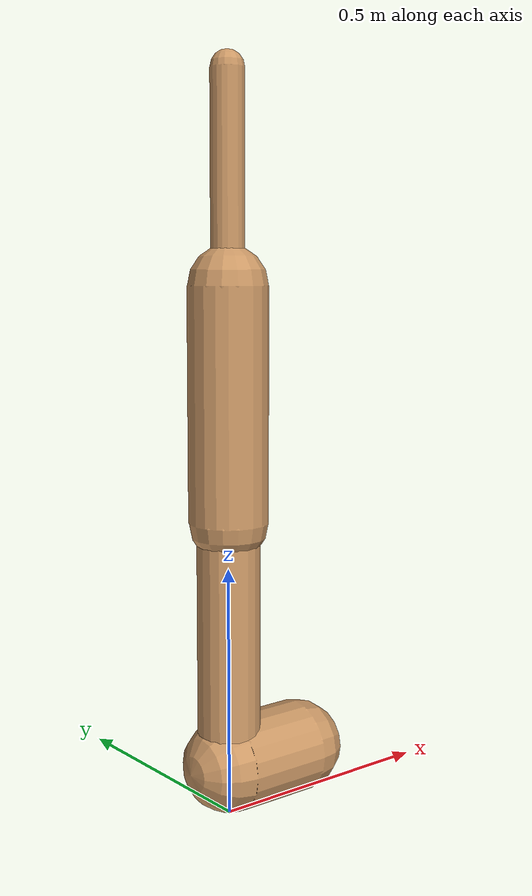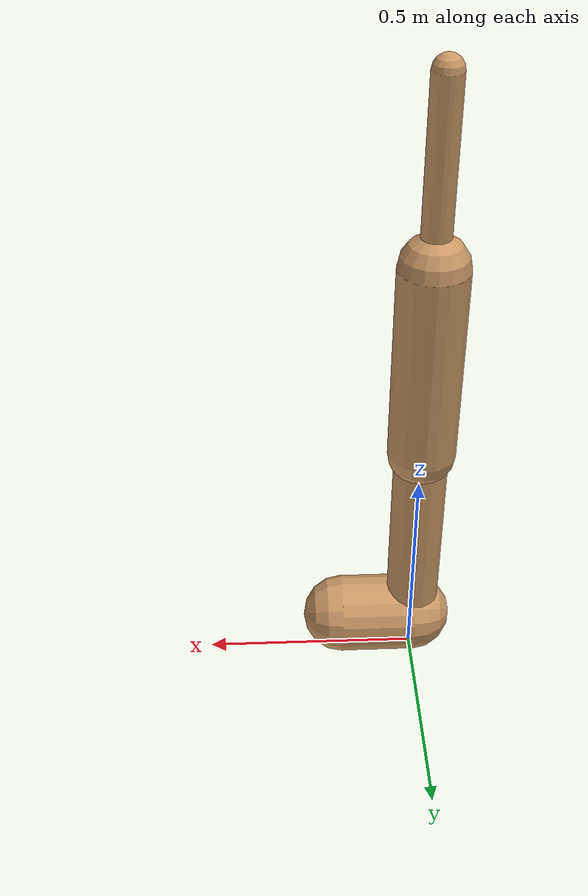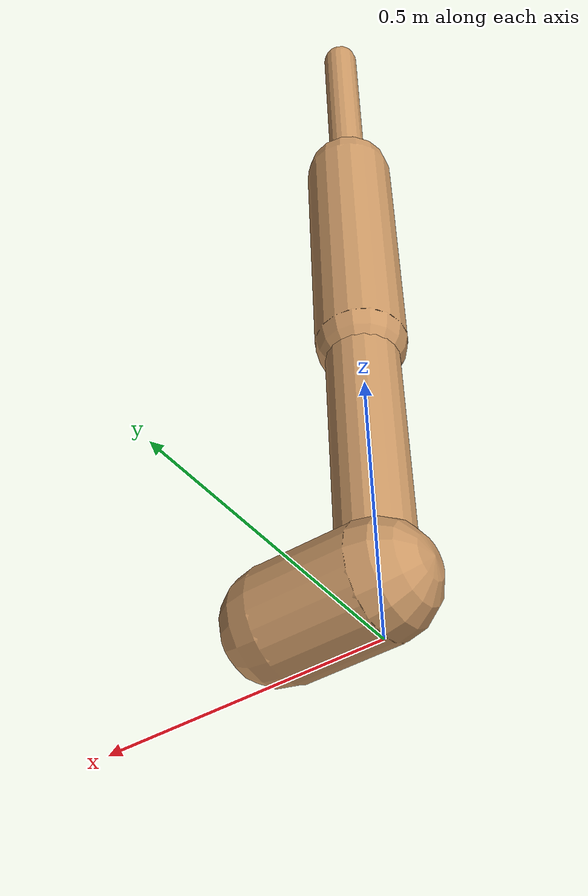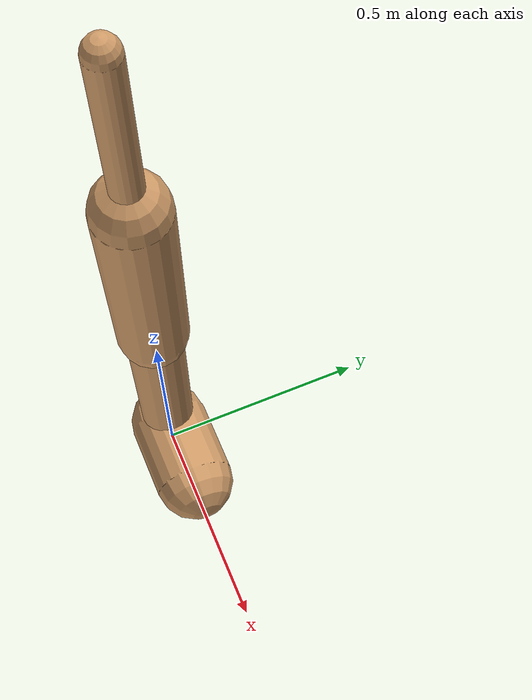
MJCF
<mujoco model="walker2d">
  <compiler angle="degree" coordinate="global" inertiafromgeom="true" />
  <default>
    <joint armature="0.01" damping=".1" limited="true" />
    <geom conaffinity="0" condim="3" contype="1" density="1000" friction="0.8 .1 .1" rgba="0.8 0.6 .4 1" />
  </default>
  <option integrator="RK4" timestep="0.002" />
  <worldbody>

    <body name="torso" pos="0 0 0.015002633095589102">
      <joint armature="0" axis="1 0 0" damping="0" limited="false" name="ignorex" pos="0 0 0" stiffness="0" type="slide" />
      <joint armature="0" axis="0 0 1" damping="0" limited="false" name="ignorez" pos="0 0 0" ref="1.25" stiffness="0" type="slide" />
      <joint armature="0" axis="0 1 0" damping="0" limited="false" name="ignorey" pos="0 0 0" stiffness="0" type="hinge" />
      <geom fromto="0 0 1.45 0 0 1.05" name="torso_geom" size="0.03277117912350783" type="capsule" />
      <body name="thigh">
        <joint axis="0 -1 0" name="thigh_joint" pos="0 0 1.05" range="-150 0" type="hinge" />
        <geom fromto="0.0 0.0 1.05 0.0 0.0 0.5928934895862998" name="thigh_geom" size="0.07787130875052867" type="capsule" />
        <body name="leg" pos="0.0 0.0 -0.00710651041370014">
          <joint axis="0 -1 0" name="leg_joint" pos="0 0 0.6" range="-150 0" type="hinge" />
          <geom fromto="0.0 0.0 0.6 0.0 0.0 0.09210387731811101" name="leg_geom" size="0.06229704700042293" type="capsule" />
          <body name="foot" pos="0.0 0.0 -0.007896122681888995">
            <joint axis="0 -1 0" name="foot_joint" pos="0 0 0.1" range="-45 45" type="hinge" />
            <geom fromto="0.0 0.0 0.1 0.17243893039083089 0.0 0.1" name="foot_geom" size="0.0938694088918236" type="capsule" />
          </body>
        </body>
      </body>

      <body name="thigh_left">
        <joint axis="0 -1 0" name="thigh_left_joint" pos="0 0 1.05" range="-150 0" type="hinge" />
        <geom fromto="0.0 0.0 1.05 0.0 0.0 0.5928934895862998" name="thigh_left_geom" rgba=".7 .3 .6 1" size="0.07787130875052867" type="capsule" />
        <body name="leg_left" pos="0.0 0.0 -0.00710651041370014">
          <joint axis="0 -1 0" name="leg_left_joint" pos="0 0 0.6" range="-150 0" type="hinge" />
          <geom fromto="0.0 0.0 0.6 0.0 0.0 0.09210387731811101" name="leg_left_geom" rgba=".7 .3 .6 1" size="0.06229704700042293" type="capsule" />
          <body name="foot_left" pos="0.0 0.0 -0.007896122681888995">
            <joint axis="0 -1 0" name="foot_left_joint" pos="0 0 0.1" range="-45 45" type="hinge" />
            <geom fromto="0.0 0.0 0.1 0.17243893039083089 0.0 0.1" name="foot_left_geom" rgba=".7 .3 .6 1" size="0.0938694088918236" type="capsule" />
          </body>
        </body>
      </body>
    </body>
  </worldbody>
  <actuator>

    <motor ctrllimited="true" ctrlrange="-1.0 1.0" gear="100" joint="thigh_joint" />
    <motor ctrllimited="true" ctrlrange="-1.0 1.0" gear="100" joint="leg_joint" />
    <motor ctrllimited="true" ctrlrange="-1.0 1.0" gear="100" joint="foot_joint" />
    <motor ctrllimited="true" ctrlrange="-1.0 1.0" gear="100" joint="thigh_left_joint" />
    <motor ctrllimited="true" ctrlrange="-1.0 1.0" gear="100" joint="leg_left_joint" />
    <motor ctrllimited="true" ctrlrange="-1.0 1.0" gear="100" joint="foot_left_joint" />

  </actuator>
</mujoco>
